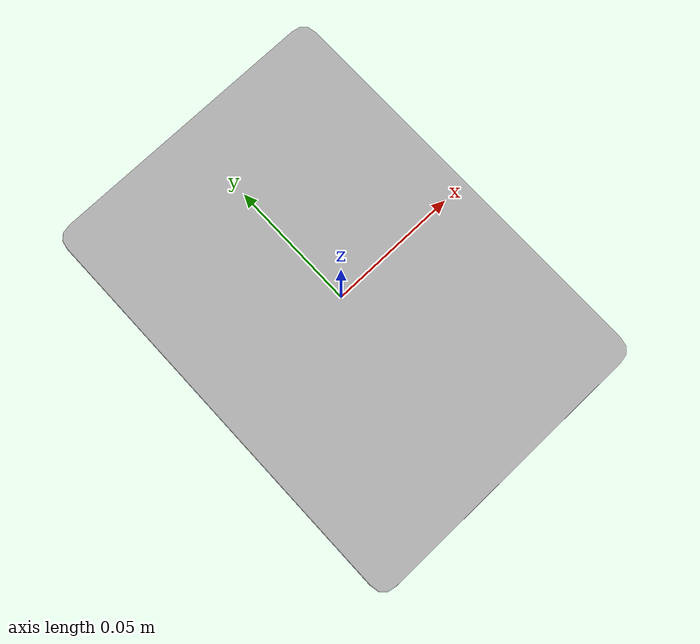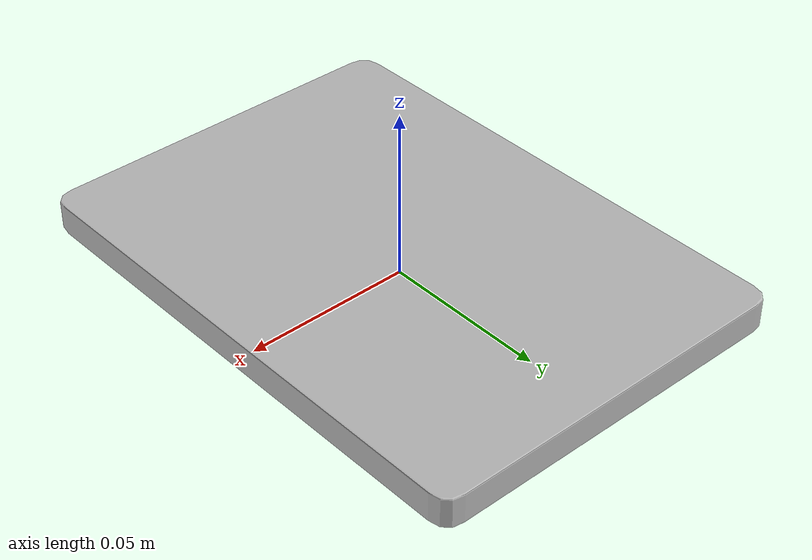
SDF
<?xml version="1.0" ?>
<sdf version="1.6">
  <model name="aws_robomaker_retail_TabletB_01">
    <link name="link">
      <inertial>
        <mass>0.161</mass>
        <inertia>
          <ixx>0.346954</ixx>
          <ixy>0</ixy>
          <ixz>0</ixz>
          <iyy>0.1772885</iyy>
          <iyz>0</iyz>
          <izz>0.5218261</izz>
        </inertia>
      </inertial>
      <collision name="collision">
        <geometry>
          <mesh>
            <uri>file://models/aws_robomaker_retail_TabletB_01/meshes/aws_TabletB_01_collision.DAE</uri>
            <scale>1 1 1</scale>
          </mesh>
        </geometry>
      </collision>
      <visual name="visual">
	    <geometry>
          <mesh>
            <uri>file://models/aws_robomaker_retail_TabletB_01/meshes/aws_TabletB_01_visual.DAE</uri>
          </mesh>
        </geometry>
        <meta>
          <layer>1</layer>
        </meta>
      </visual>
    </link>
    <static>1</static>
  </model>
</sdf>
